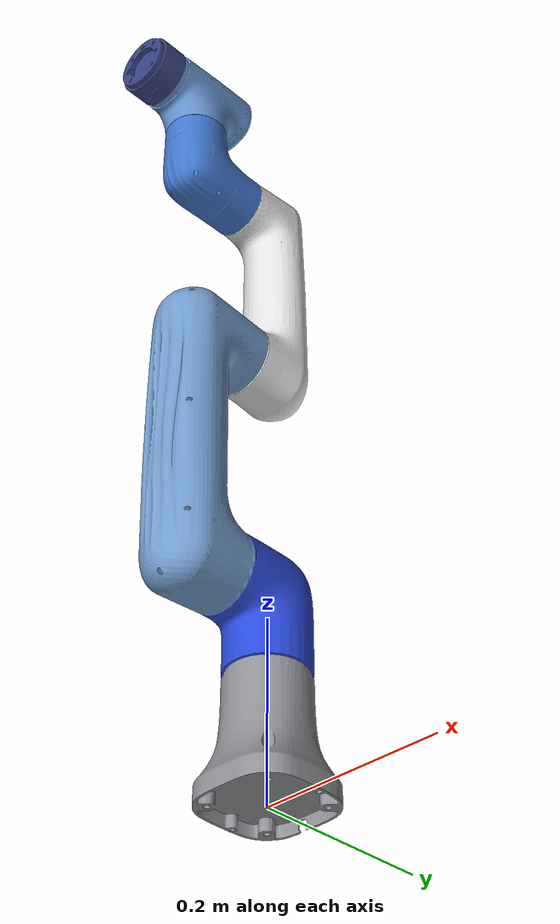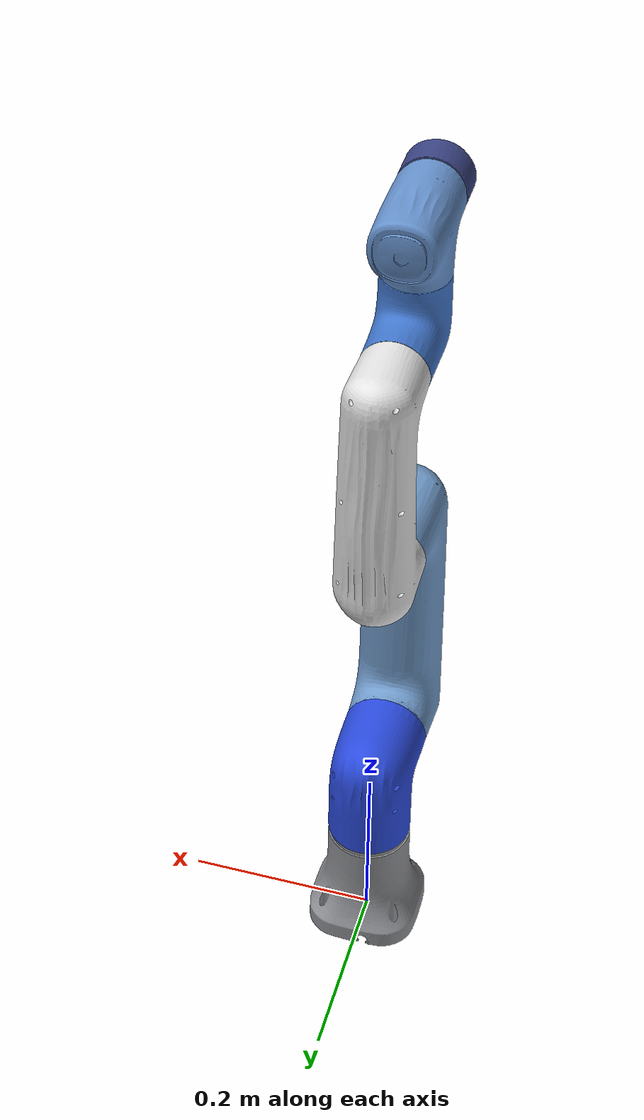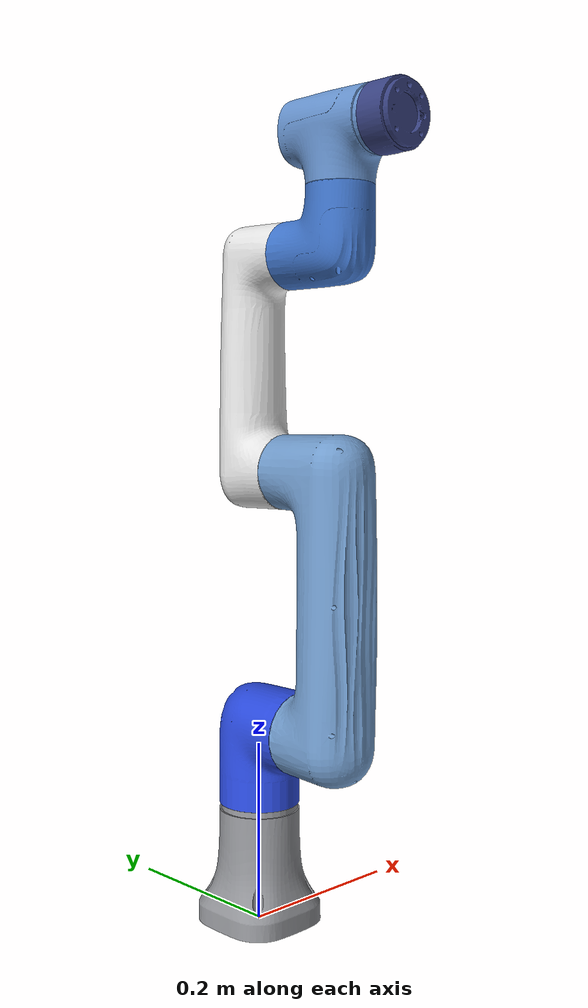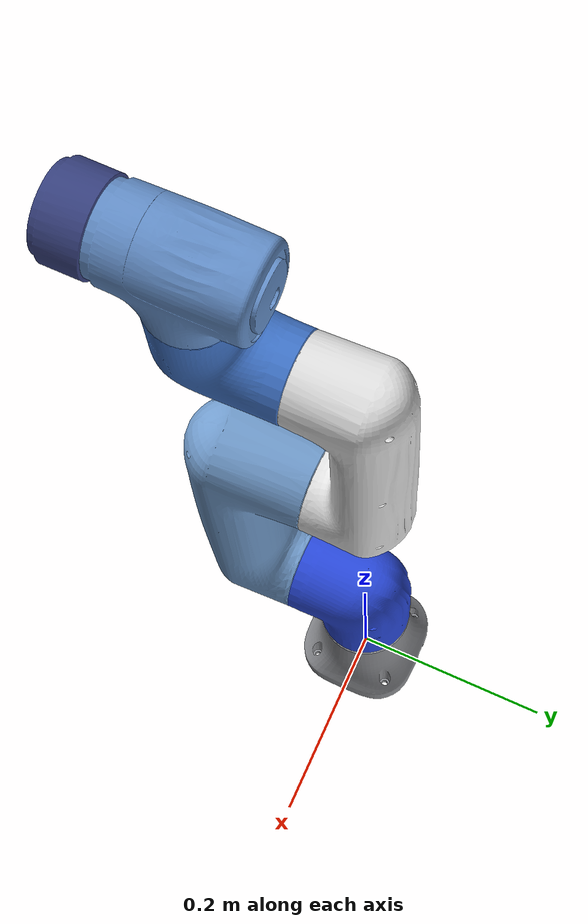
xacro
<?xml version="1.0"?>
<robot name="nova2_robot" xmlns:xacro="http://www.ros.org/wiki/xacro">
  <xacro:arg name="name" default="nova2_robot"/>
  <xacro:arg name="use_ros2_control" default="true"/>
  <xacro:arg name="ns"   default="nova2_robot0"/>
  <xacro:arg name="use_ros2_control" default="true"/>

  <!-- ===== World / dummy / base ===== -->
  <link name="dummy_link"/>
  <link name="world"/>
  <joint name="world_joint" type="fixed">
    <origin xyz="0 0 0.0" rpy="0 0 0"/>
    <parent link="world"/>
    <child  link="dummy_link"/>
  </joint>

  <link name="base_link">
    <inertial>
      <origin xyz="1.31739324853774E-05 -7.84959718585273E-06 0.0647773077977383" rpy="0 0 0"/>
      <mass value="0.939873286768969"/>
      <inertia ixx="0.00191682867137382" ixy="-3.45738044468349E-07" ixz="7.09345652971545E-07"
               iyy="0.00192279468074328" iyz="-4.56838232777704E-07" izz="0.00127269960160789"/>
    </inertial>
    <visual>
      <origin xyz="0 0 0" rpy="0 0 0"/>
      <geometry><mesh filename="package://nova_description/meshes/nova2/base_link.dae"/></geometry>
    </visual>
    <collision>
      <origin xyz="0 0 0" rpy="0 0 0"/>
      <geometry><mesh filename="package://nova_description/meshes/nova2/base_link.dae"/></geometry>
    </collision>
  </link>

  <joint name="dummy_joint" type="fixed">
    <parent link="dummy_link"/>
    <child  link="base_link"/>
  </joint>

  <!-- ===== Links & joints ===== -->
  <link name="Link1">
    <inertial>
      <origin xyz="-5.44523391156536E-07 -0.0218722568945782 -0.0236239644661121" rpy="0 0 0"/>
      <mass value="0.803371401390743"/>
      <inertia ixx="0.00167952903521413" ixy="1.54449368288654E-07" ixz="6.95728401748556E-08"
               iyy="0.00146965832921226" iyz="0.000442022256560709" izz="0.00103706598237737"/>
    </inertial>
    <visual>
      <origin xyz="0 0 0" rpy="0 0 0"/>
      <geometry><mesh filename="package://nova_description/meshes/nova2/Link1.dae"/></geometry>
    </visual>
    <collision>
      <origin xyz="0 0 0" rpy="0 0 0"/>
      <geometry><mesh filename="package://nova_description/meshes/nova2/Link1.dae"/></geometry>
    </collision>
  </link>

  <joint name="joint1" type="revolute">
    <origin xyz="0 0 0.2234" rpy="0 0 0"/>
    <parent link="base_link"/>
    <child  link="Link1"/>
    <axis xyz="0 0 -1"/>
    <limit lower="-6.28" upper="6.28" effort="300" velocity="200"/>
  </joint>

  <link name="Link2">
    <inertial>
      <origin xyz="-0.150313750410422 4.18877523206172E-06 0.0931448460647906" rpy="0 0 0"/>
      <mass value="1.57815975340995"/>
      <inertia ixx="0.00156674973214016" ixy="-1.57289561886805E-07" ixz="-0.00115240117121709"
               iyy="0.0216397042193888" iyz="-1.09920891390281E-07" izz="0.0217363605210336"/>
    </inertial>
    <visual>
      <origin xyz="0 0 0" rpy="0 0 0"/>
      <geometry><mesh filename="package://nova_description/meshes/nova2/Link2.dae"/></geometry>
    </visual>
    <collision>
      <origin xyz="0 0 0" rpy="0 0 0"/>
      <geometry><mesh filename="package://nova_description/meshes/nova2/Link2.dae"/></geometry>
    </collision>
  </link>

  <joint name="joint2" type="revolute">
    <origin xyz="0 0 0" rpy="1.5708 1.5708 0"/>
    <parent link="Link1"/>
    <child  link="Link2"/>
    <axis xyz="0 0 1"/>
    <limit lower="-3.14" upper="3.14" effort="300" velocity="200"/>
  </joint>

  <link name="Link3">
    <inertial>
      <origin xyz="-0.118295307270688 3.91200533585901E-06 0.0113008075933966" rpy="0 0 0"/>
      <mass value="0.99867391089996"/>
      <inertia ixx="0.000775712315283709" ixy="4.7133171421654E-08" ixz="0.000543588636158171"
               iyy="0.00938204904571472" iyz="6.82619728416736E-08" izz="0.00940115973618697"/>
    </inertial>
    <visual>
      <origin xyz="0 0 0" rpy="0 0 0"/>
      <geometry><mesh filename="package://nova_description/meshes/nova2/Link3.dae"/></geometry>
    </visual>
    <collision>
      <origin xyz="0 0 0" rpy="0 0 0"/>
      <geometry><mesh filename="package://nova_description/meshes/nova2/Link3.dae"/></geometry>
    </collision>
  </link>

  <joint name="joint3" type="revolute">
    <origin xyz="-0.28 0 0" rpy="0 0 0"/>
    <parent link="Link2"/>
    <child  link="Link3"/>
    <axis xyz="0 0 1"/>
    <limit lower="-2.79" upper="2.79" effort="300" velocity="200"/>
  </joint>

  <link name="Link4">
    <inertial>
      <origin xyz="-7.47431367277975E-06 -0.0226550273917204 -0.0204586561908531" rpy="0 0 0"/>
      <mass value="0.441608812891546"/>
      <inertia ixx="0.000641172450255966" ixy="1.23887771284186E-08" ixz="3.02489770721575E-08"
               iyy="0.000455371502301378" iyz="0.000213282779675717" izz="0.000482718528361731"/>
    </inertial>
    <visual>
      <origin xyz="0 0 0" rpy="0 0 0"/>
      <geometry><mesh filename="package://nova_description/meshes/nova2/Link4.dae"/></geometry>
    </visual>
    <collision>
      <origin xyz="0 0 0" rpy="0 0 0"/>
      <geometry><mesh filename="package://nova_description/meshes/nova2/Link4.dae"/></geometry>
    </collision>
  </link>

  <joint name="joint4" type="revolute">
    <origin xyz="-0.22501 0 0.1175" rpy="0 0 -1.5708"/>
    <parent link="Link3"/>
    <child  link="Link4"/>
    <axis xyz="0 0 -1"/>
    <limit lower="-6.28" upper="6.28" effort="300" velocity="200"/>
  </joint>

  <link name="Link5">
    <inertial>
      <origin xyz="-2.62723419601498E-06 0.00191303345902123 -0.00761123061599434" rpy="0 0 0"/>
      <mass value="0.574835130262751"/>
      <inertia ixx="0.000663176880312698" ixy="1.50480808241957E-08" ixz="1.31860791104645E-08"
               iyy="0.000397520642705227" iyz="-0.000120263783985693" izz="0.000641156755381468"/>
    </inertial>
    <visual>
      <origin xyz="0 0 0" rpy="0 0 0"/>
      <geometry><mesh filename="package://nova_description/meshes/nova2/Link5.dae"/></geometry>
    </visual>
    <collision>
      <origin xyz="0 0 0" rpy="0 0 0"/>
      <geometry><mesh filename="package://nova_description/meshes/nova2/Link5.dae"/></geometry>
    </collision>
  </link>

  <joint name="joint5" type="revolute">
    <origin xyz="0 -0.12 0" rpy="1.5708 0 0"/>
    <parent link="Link4"/>
    <child  link="Link5"/>
    <axis xyz="0 0 -1"/>
    <limit lower="-6.28" upper="6.28" effort="300" velocity="200"/>
  </joint>

  <link name="Link6">
    <inertial>
      <origin xyz="-4.63325246499096E-07 -4.92709726822582E-05 -0.0196921496196789" rpy="0 0 0"/>
      <mass value="0.124247087839584"/>
      <inertia ixx="4.97044850239183E-05" ixy="1.38276337649473E-11" ixz="-2.68970069169078E-11"
               iyy="4.99145981166397E-05" iyz="5.03763611900752E-08" izz="7.67222809720147E-05"/>
    </inertial>
    <visual>
      <origin xyz="0 0 0" rpy="0 0 0"/>
      <geometry><mesh filename="package://nova_description/meshes/nova2/Link6.dae"/></geometry>
    </visual>
    <collision>
      <origin xyz="0 0 0" rpy="0 0 0"/>
      <geometry><mesh filename="package://nova_description/meshes/nova2/Link6.dae"/></geometry>
    </collision>
  </link>

  <joint name="joint6" type="revolute">
    <origin xyz="0 0.088004 0" rpy="-1.5708 0 0"/>
    <parent link="Link5"/>
    <child  link="Link6"/>
    <axis xyz="0 0 1"/>
    <limit lower="-6.28" upper="6.28" effort="300" velocity="200"/>
  </joint>

  <!-- ===== Gazebo per-link visual materials (Gazebo Classic 可见；RViz不受影响) ===== -->
  <gazebo reference="base_link"><gravity>true</gravity><selfCollide>true</selfCollide><material></material></gazebo>
  <gazebo reference="Link1"><gravity>true</gravity><selfCollide>true</selfCollide><material></material></gazebo>
  <gazebo reference="Link2"><gravity>true</gravity><selfCollide>true</selfCollide><material></material></gazebo>
  <gazebo reference="Link3"><gravity>true</gravity><selfCollide>true</selfCollide><material></material></gazebo>
  <gazebo reference="Link4"><gravity>true</gravity><selfCollide>true</selfCollide><material></material></gazebo>
  <gazebo reference="Link5"><gravity>true</gravity><selfCollide>true</selfCollide><material></material></gazebo>
  <gazebo reference="Link6"><gravity>true</gravity><selfCollide>true</selfCollide><material></material></gazebo>
    <!-- ros_control plugin -->
    <gazebo>
      <plugin
        filename="gz_ros2_control-system"
        name="gz_ros2_control::GazeboSimROS2ControlPlugin">

        <!-- your controllers YAML -->
        <parameters>$(find nova_description)/config/nova2_controllers.yaml</parameters>

        <!-- this is where the namespace is used -->
        <ros>
          <namespace>$(arg ns)</namespace>
        </ros>
      </plugin>
    </gazebo>

    <!-- joint_state_publisher from Gazebo (optional but handy) -->
    <gazebo>
      <plugin
        filename="gz-sim-joint-state-publisher-system"
        name="gz::sim::systems::JointStatePublisher">
        <topic>joint_states</topic>
        <joint_name>joint1</joint_name>
        <joint_name>joint2</joint_name>
        <joint_name>joint3</joint_name>
        <joint_name>joint4</joint_name>
        <joint_name>joint5</joint_name>
        <joint_name>joint6</joint_name>
      </plugin>
    </gazebo>

    <!-- ros2_control hardware description -->
    <ros2_control name="GazeboSimSystem" type="system">
      <hardware>
        <plugin>gz_ros2_control/GazeboSimSystem</plugin>
      </hardware>

      <joint name="joint1">
        <command_interface name="position"/>
        <state_interface name="position">
          <param name="initial_value">0.0</param>
        </state_interface>
      </joint>

      <joint name="joint2">
        <command_interface name="position"/>
        <state_interface name="position">
          <param name="initial_value">0.0</param>
        </state_interface>
      </joint>

      <joint name="joint3">
        <command_interface name="position"/>
        <state_interface name="position">
          <param name="initial_value">0.0</param>
        </state_interface>
      </joint>

      <joint name="joint4">
        <command_interface name="position"/>
        <state_interface name="position">
          <param name="initial_value">0.0</param>
        </state_interface>
      </joint>

      <joint name="joint5">
        <command_interface name="position"/>
        <state_interface name="position">
          <param name="initial_value">0.0</param>
        </state_interface>
      </joint>

      <joint name="joint6">
        <command_interface name="position"/>
        <state_interface name="position">
          <param name="initial_value">0.0</param>
        </state_interface>
      </joint>
    </ros2_control>

</robot>
